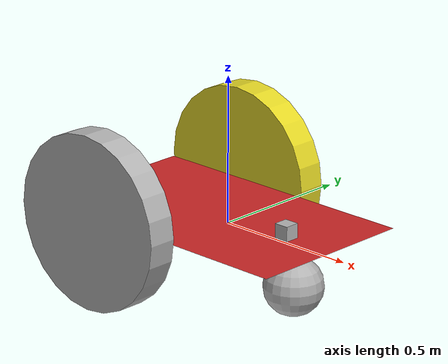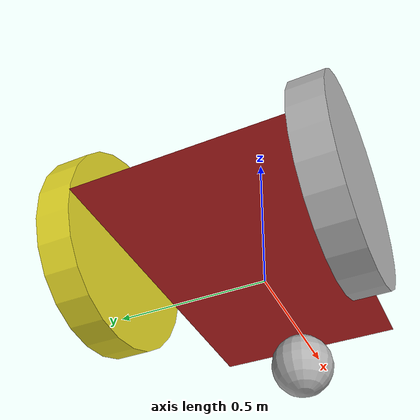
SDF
<?xml version='1.0'?>
<sdf version='1.6'>
  <model name='auc_robot'>
    <link name='chassis'>
      <inertial>
        <mass>1</mass>
        <inertia>
          <ixx>0.166667</ixx>
          <ixy>0</ixy>
          <ixz>0</ixz>
          <iyy>0.166667</iyy>
          <iyz>0</iyz>
          <izz>0.166667</izz>
        </inertia>
        <pose frame=''>0 0 0 0 -0 0</pose>
      </inertial>
      <pose frame=''>-0.064 0.0155 0.010574 0 -0 0</pose>
      <gravity>1</gravity>
      <self_collide>0</self_collide>
      <kinematic>0</kinematic>
      <enable_wind>0</enable_wind>
      <visual name='visual'>
        <pose frame=''>0 0 0 0 -0 0</pose>
        <geometry>
          <box>
            <size>1 0.6 0</size>
          </box>
        </geometry>
        <material>
          <lighting>1</lighting>
          <script>
            <uri>file://media/materials/scripts/gazebo.material</uri>
            <name>Gazebo/Red</name>
          </script>

        </material>
        <transparency>0</transparency>
        <cast_shadows>1</cast_shadows>
      </visual>
      <collision name='collision'>
        <laser_retro>0</laser_retro>
        <max_contacts>10</max_contacts>
        <pose frame=''>0 0 0 0 -0 0</pose>
        <geometry>
          <box>
            <size>1 0.6 0.2</size>
          </box>
        </geometry>
        <surface>
          <friction>
            <ode>
              <mu>1</mu>
              <mu2>1</mu2>
              <fdir1>0 0 0</fdir1>
              <slip1>0</slip1>
              <slip2>0</slip2>
            </ode>
            <torsional>
              <coefficient>1</coefficient>
              <patch_radius>0</patch_radius>
              <surface_radius>0</surface_radius>
              <use_patch_radius>1</use_patch_radius>
              <ode>
                <slip>0</slip>
              </ode>
            </torsional>
          </friction>
          <bounce>
            <restitution_coefficient>0</restitution_coefficient>
            <threshold>1e+06</threshold>
          </bounce>
          <contact>
            <collide_without_contact>0</collide_without_contact>
            <collide_without_contact_bitmask>1</collide_without_contact_bitmask>
            <collide_bitmask>1</collide_bitmask>
            <ode>
              <soft_cfm>0</soft_cfm>
              <soft_erp>0.2</soft_erp>
              <kp>1e+13</kp>
              <kd>1</kd>
              <max_vel>0.01</max_vel>
              <min_depth>0</min_depth>
            </ode>
            <bullet>
              <split_impulse>1</split_impulse>
              <split_impulse_penetration_threshold>-0.01</split_impulse_penetration_threshold>
              <soft_cfm>0</soft_cfm>
              <soft_erp>0.2</soft_erp>
              <kp>1e+13</kp>
              <kd>1</kd>
            </bullet>
          </contact>
        </surface>
      </collision>
    </link>
    <link name='right_wheel'>
      <inertial>
        <mass>1</mass>
        <inertia>
          <ixx>0.145833</ixx>
          <ixy>0</ixy>
          <ixz>0</ixz>
          <iyy>0.145833</iyy>
          <iyz>0</iyz>
          <izz>0.125</izz>
        </inertia>
        <pose frame=''>0 0 0 0 -0 0</pose>
      </inertial>
      <pose frame=''>-0.264 0.365529 0.030574 0 -0 0</pose>
      <gravity>1</gravity>
      <self_collide>0</self_collide>
      <kinematic>0</kinematic>
      <enable_wind>0</enable_wind>
      <visual name='visual'>
        <pose frame=''>0 0 0 1.5707 -0 0</pose>
        <geometry>
          <cylinder>
            <radius>0.3</radius>
            <length>0.1</length>
          </cylinder>
        </geometry>
        <material>
          <lighting>1</lighting>
          <script>
            <uri>file://media/materials/scripts/gazebo.material</uri>
            <name>Gazebo/Yellow</name>

          </script>

        </material>
        <transparency>0</transparency>
        <cast_shadows>1</cast_shadows>
      </visual>
      <collision name='collision'>
        <laser_retro>0</laser_retro>
        <max_contacts>10</max_contacts>
        <pose frame=''>0 0 0 1.5707 -0 0</pose>
        <geometry>
          <cylinder>
            <radius>0.3</radius>
            <length>0.1</length>
          </cylinder>
        </geometry>
        <surface>
          <friction>
            <ode>
              <mu>1</mu>
              <mu2>1</mu2>
              <fdir1>0 0 0</fdir1>
              <slip1>0</slip1>
              <slip2>0</slip2>
            </ode>
            <torsional>
              <coefficient>1</coefficient>
              <patch_radius>0</patch_radius>
              <surface_radius>0</surface_radius>
              <use_patch_radius>1</use_patch_radius>
              <ode>
                <slip>0</slip>
              </ode>
            </torsional>
          </friction>
          <bounce>
            <restitution_coefficient>0</restitution_coefficient>
            <threshold>1e+06</threshold>
          </bounce>
          <contact>
            <collide_without_contact>0</collide_without_contact>
            <collide_without_contact_bitmask>1</collide_without_contact_bitmask>
            <collide_bitmask>1</collide_bitmask>
            <ode>
              <soft_cfm>0</soft_cfm>
              <soft_erp>0.2</soft_erp>
              <kp>1e+13</kp>
              <kd>1</kd>
              <max_vel>0.01</max_vel>
              <min_depth>0</min_depth>
            </ode>
            <bullet>
              <split_impulse>1</split_impulse>
              <split_impulse_penetration_threshold>-0.01</split_impulse_penetration_threshold>
              <soft_cfm>0</soft_cfm>
              <soft_erp>0.2</soft_erp>
              <kp>1e+13</kp>
              <kd>1</kd>
            </bullet>
          </contact>
        </surface>
      </collision>
    </link>
    <link name='left_wheel'>
      <inertial>
        <mass>1</mass>
        <inertia>
          <ixx>0.145833</ixx>
          <ixy>0</ixy>
          <ixz>0</ixz>
          <iyy>0.145833</iyy>
          <iyz>0</iyz>
          <izz>0.125</izz>
        </inertia>
        <pose frame=''>0 0 0 0 -0 0</pose>
      </inertial>
      <pose frame=''>-0.264 -0.334529 0.030574 0 -0 0</pose>
      <gravity>1</gravity>
      <self_collide>0</self_collide>
      <kinematic>0</kinematic>
      <enable_wind>0</enable_wind>
      <visual name='visual'>
        <pose frame=''>0 0 0 1.5707 -0 0</pose>
        <geometry>
          <cylinder>
            <radius>0.3</radius>
            <length>0.1</length>
          </cylinder>
        </geometry>
        <material>
          <lighting>1</lighting>
          <script>
            <uri>file://media/materials/scripts/gazebo.material</uri>
            <name><Gazebo/>
            <Yellow></Yellow></name>
          </script>
          <shader type='pixel'>
            <normal_map>__default__</normal_map>
          </shader>
          <ambient>0.3 0.3 0.3 1</ambient>
          <diffuse>0.7 0.7 0.7 1</diffuse>
          <specular>0.01 0.01 0.01 1</specular>
          <emissive>0 0 0 1</emissive>
        </material>
        <transparency>0</transparency>
        <cast_shadows>1</cast_shadows>
      </visual>
      <collision name='collision'>
        <laser_retro>0</laser_retro>
        <max_contacts>10</max_contacts>
        <pose frame=''>0 0 0 1.5707 -0 0</pose>
        <geometry>
          <cylinder>
            <radius>0.3</radius>
            <length>0.1</length>
          </cylinder>
        </geometry>
        <surface>
          <friction>
            <ode>
              <mu>1</mu>
              <mu2>1</mu2>
              <fdir1>0 0 0</fdir1>
              <slip1>0</slip1>
              <slip2>0</slip2>
            </ode>
            <torsional>
              <coefficient>1</coefficient>
              <patch_radius>0</patch_radius>
              <surface_radius>0</surface_radius>
              <use_patch_radius>1</use_patch_radius>
              <ode>
                <slip>0</slip>
              </ode>
            </torsional>
          </friction>
          <bounce>
            <restitution_coefficient>0</restitution_coefficient>
            <threshold>1e+06</threshold>
          </bounce>
          <contact>
            <collide_without_contact>0</collide_without_contact>
            <collide_without_contact_bitmask>1</collide_without_contact_bitmask>
            <collide_bitmask>1</collide_bitmask>
            <ode>
              <soft_cfm>0</soft_cfm>
              <soft_erp>0.2</soft_erp>
              <kp>1e+13</kp>
              <kd>1</kd>
              <max_vel>0.01</max_vel>
              <min_depth>0</min_depth>
            </ode>
            <bullet>
              <split_impulse>1</split_impulse>
              <split_impulse_penetration_threshold>-0.01</split_impulse_penetration_threshold>
              <soft_cfm>0</soft_cfm>
              <soft_erp>0.2</soft_erp>
              <kp>1e+13</kp>
              <kd>1</kd>
            </bullet>
          </contact>
        </surface>
      </collision>
    </link>
    <link name='castor '>
      <inertial>
        <mass>1</mass>
        <inertia>
          <ixx>0.1</ixx>
          <ixy>0</ixy>
          <ixz>0</ixz>
          <iyy>0.1</iyy>
          <iyz>0</iyz>
          <izz>0.1</izz>
        </inertia>
        <pose frame=''>0 0 0 0 -0 0</pose>
      </inertial>
      <pose frame=''>0.296 -0.0045 -0.134611 0 -0 0</pose>
      <gravity>1</gravity>
      <self_collide>0</self_collide>
      <kinematic>0</kinematic>
      <enable_wind>0</enable_wind>
      <visual name='visual'>
        <pose frame=''>0 0 0 0 -0 0</pose>
        <geometry>
          <sphere>
            <radius>0.1</radius>
          </sphere>
        </geometry>
        <material>
          <lighting>1</lighting>
          <script>
            <uri>file://media/materials/scripts/gazebo.material</uri>
            <name><Gazebo/>
            <White></White></name>
          </script>
          <shader type='pixel'>
            <normal_map>__default__</normal_map>
          </shader>
          <ambient>0.3 0.3 0.3 1</ambient>
          <diffuse>0.7 0.7 0.7 1</diffuse>
          <specular>0.01 0.01 0.01 1</specular>
          <emissive>0 0 0 1</emissive>
        </material>
        <transparency>0</transparency>
        <cast_shadows>1</cast_shadows>
      </visual>
      <collision name='collision'>
        <laser_retro>0</laser_retro>
        <max_contacts>10</max_contacts>
        <pose frame=''>0 0 0 0 -0 0</pose>
        <geometry>
          <sphere>
            <radius>0.1</radius>
          </sphere>
        </geometry>
        <surface>
          <friction>
            <ode>
              <mu>1</mu>
              <mu2>1</mu2>
              <fdir1>0 0 0</fdir1>
              <slip1>0</slip1>
              <slip2>0</slip2>
            </ode>
            <torsional>
              <coefficient>1</coefficient>
              <patch_radius>0</patch_radius>
              <surface_radius>0</surface_radius>
              <use_patch_radius>1</use_patch_radius>
              <ode>
                <slip>0</slip>
              </ode>
            </torsional>
          </friction>
          <bounce>
            <restitution_coefficient>0</restitution_coefficient>
            <threshold>1e+06</threshold>
          </bounce>
          <contact>
            <collide_without_contact>0</collide_without_contact>
            <collide_without_contact_bitmask>1</collide_without_contact_bitmask>
            <collide_bitmask>1</collide_bitmask>
            <ode>
              <soft_cfm>0</soft_cfm>
              <soft_erp>0.2</soft_erp>
              <kp>1e+13</kp>
              <kd>1</kd>
              <max_vel>0.01</max_vel>
              <min_depth>0</min_depth>
            </ode>
            <bullet>
              <split_impulse>1</split_impulse>
              <split_impulse_penetration_threshold>-0.01</split_impulse_penetration_threshold>
              <soft_cfm>0</soft_cfm>
              <soft_erp>0.2</soft_erp>
              <kp>1e+13</kp>
              <kd>1</kd>
            </bullet>
          </contact>
        </surface>
      </collision>
    </link>
    <link name='camera '>
      <inertial>
        <mass>1</mass>
        <inertia>
          <ixx>0.166667</ixx>
          <ixy>0</ixy>
          <ixz>0</ixz>
          <iyy>0.166667</iyy>
          <iyz>0</iyz>
          <izz>0.166667</izz>
        </inertia>
        <pose frame=''>0 0 0 0 -0 0</pose>
      </inertial>
      <pose frame=''>0.296 -0.042 0.064205 0 -0 0</pose>
      <gravity>1</gravity>
      <self_collide>0</self_collide>
      <kinematic>0</kinematic>
      <enable_wind>0</enable_wind>
      <visual name='visual'>
        <pose frame=''>0 0 0 0 -0 0</pose>
        <geometry>
          <box>
            <size>0.05 0.05 0.05</size>
          </box>
        </geometry>
        <material>
          <lighting>1</lighting>
          <script>
            <uri>file://media/materials/scripts/gazebo.material</uri>
            <name><Gazebo/>
            <Blue></Blue></name>
          </script>
          <shader type='pixel'>
            <normal_map>__default__</normal_map>
          </shader>
          <ambient>0.3 0.3 0.3 1</ambient>
          <diffuse>0.7 0.7 0.7 1</diffuse>
          <specular>0.01 0.01 0.01 1</specular>
          <emissive>0 0 0 1</emissive>
        </material>
        <transparency>0</transparency>
        <cast_shadows>1</cast_shadows>
      </visual>
      <collision name='collision'>
        <laser_retro>0</laser_retro>
        <max_contacts>10</max_contacts>
        <pose frame=''>0 0 0 0 -0 0</pose>
        <geometry>
          <box>
            <size>0.05 0.05 0.05</size>
          </box>
        </geometry>
        <surface>
          <friction>
            <ode>
              <mu>1</mu>
              <mu2>1</mu2>
              <fdir1>0 0 0</fdir1>
              <slip1>0</slip1>
              <slip2>0</slip2>
            </ode>
            <torsional>
              <coefficient>1</coefficient>
              <patch_radius>0</patch_radius>
              <surface_radius>0</surface_radius>
              <use_patch_radius>1</use_patch_radius>
              <ode>
                <slip>0</slip>
              </ode>
            </torsional>
          </friction>
          <bounce>
            <restitution_coefficient>0</restitution_coefficient>
            <threshold>1e+06</threshold>
          </bounce>
          <contact>
            <collide_without_contact>0</collide_without_contact>
            <collide_without_contact_bitmask>1</collide_without_contact_bitmask>
            <collide_bitmask>1</collide_bitmask>
            <ode>
              <soft_cfm>0</soft_cfm>
              <soft_erp>0.2</soft_erp>
              <kp>1e+13</kp>
              <kd>1</kd>
              <max_vel>0.01</max_vel>
              <min_depth>0</min_depth>
            </ode>
            <bullet>
              <split_impulse>1</split_impulse>
              <split_impulse_penetration_threshold>-0.01</split_impulse_penetration_threshold>
              <soft_cfm>0</soft_cfm>
              <soft_erp>0.2</soft_erp>
              <kp>1e+13</kp>
              <kd>1</kd>
            </bullet>
          </contact>
        </surface>
      </collision>
    </link>
    <joint name='right_wheel_joint' type='revolute'>
      <parent>chassis</parent>
      <child>right_wheel</child>
      <pose frame=''>0 0 0 0 -0 0</pose>
      <axis>
        <xyz>-0 -1 -0</xyz>
        <use_parent_model_frame>0</use_parent_model_frame>
        <limit>
          <lower>-1.79769e+308</lower>
          <upper>1.79769e+308</upper>
          <effort>-1</effort>
          <velocity>-1</velocity>
        </limit>
        <dynamics>
          <spring_reference>0</spring_reference>
          <spring_stiffness>0</spring_stiffness>
          <damping>0</damping>
          <friction>0</friction>
        </dynamics>
      </axis>
      <physics>
        <ode>
          <limit>
            <cfm>0</cfm>
            <erp>0.2</erp>
          </limit>
          <suspension>
            <cfm>0</cfm>
            <erp>0.2</erp>
          </suspension>
        </ode>
      </physics>
    </joint>
    <joint name='left_wheel_joint' type='revolute'>
      <parent>chassis</parent>
      <child>left_wheel</child>
      <pose frame=''>0 0 0 0 -0 0</pose>
      <axis>
        <xyz>0 1 0</xyz>
        <use_parent_model_frame>0</use_parent_model_frame>
        <limit>
          <lower>-1.79769e+308</lower>
          <upper>1.79769e+308</upper>
          <effort>-1</effort>
          <velocity>-1</velocity>
        </limit>
        <dynamics>
          <spring_reference>0</spring_reference>
          <spring_stiffness>0</spring_stiffness>
          <damping>0</damping>
          <friction>0</friction>
        </dynamics>
      </axis>
      <physics>
        <ode>
          <limit>
            <cfm>0</cfm>
            <erp>0.2</erp>
          </limit>
          <suspension>
            <cfm>0</cfm>
            <erp>0.2</erp>
          </suspension>
        </ode>
      </physics>
    </joint>
    <joint name='castor_joint' type='ball'>
      <parent>chassis</parent>
      <child>castor </child>
      <pose frame=''>0 0 0 0 -0 0</pose>
      <physics>
        <ode>
          <limit>
            <cfm>0</cfm>
            <erp>0.2</erp>
          </limit>
          <suspension>
            <cfm>0</cfm>
            <erp>0.2</erp>
          </suspension>
        </ode>
      </physics>
    </joint>
    <joint name='camera_joint' type='fixed'>
      <parent>chassis</parent>
      <child>camera </child>
      <pose frame=''>0 0 0 0 -0 0</pose>
      <physics>
        <ode>
          <limit>
            <cfm>0</cfm>
            <erp>0.2</erp>
          </limit>
          <suspension>
            <cfm>0</cfm>
            <erp>0.2</erp>
          </suspension>
        </ode>
      </physics>
    </joint>
    <static>0</static>
    <allow_auto_disable>1</allow_auto_disable>
  </model>
</sdf>
